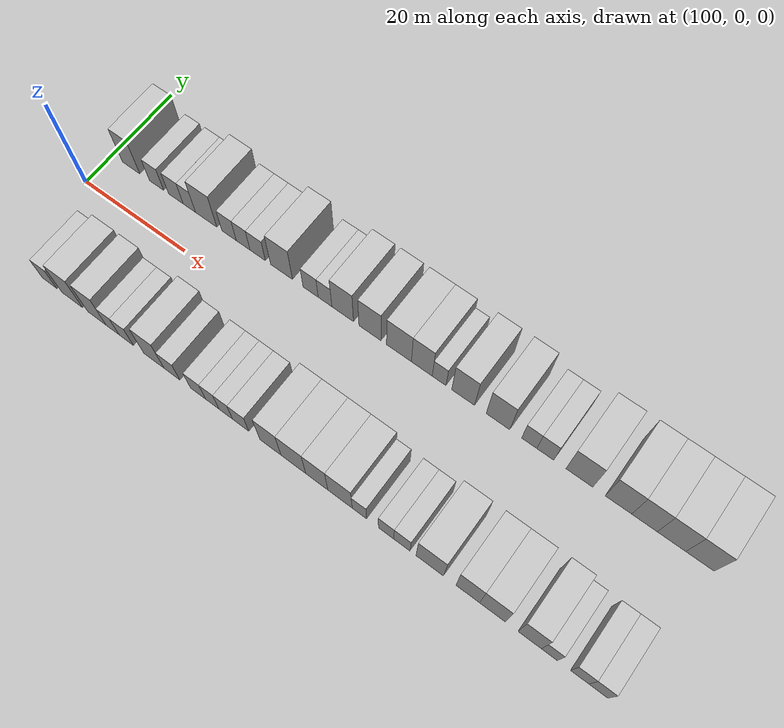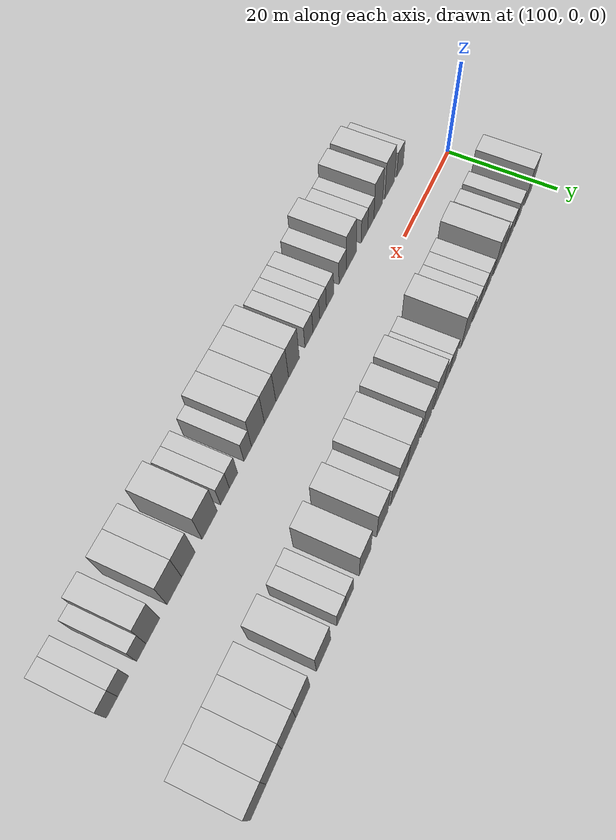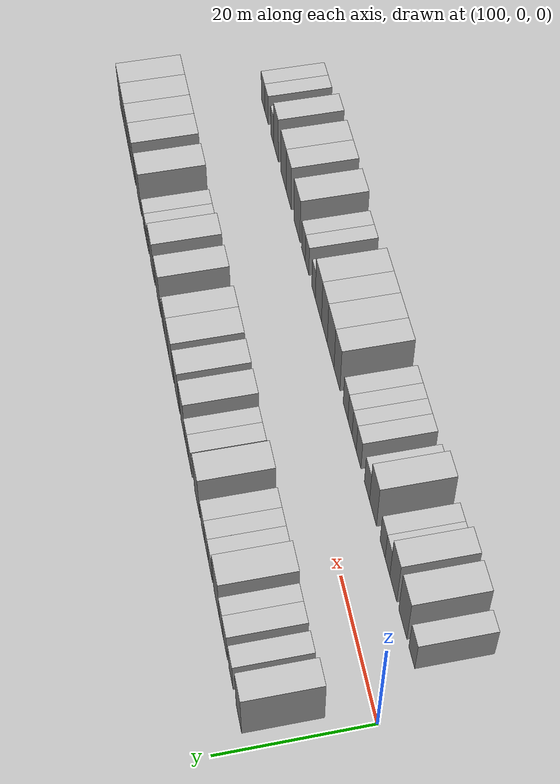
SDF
<sdf version="1.6">
 <world name="default">
  <model name="building_26">
   <static>1</static>
   <pose>103.8715 11.0000 0 0.000000 0.000000 1.570796</pose>
   <link name="link">
    <pose>0 0 4.50 0 0 0</pose>
    <collision name="collision"><geometry><box><size>10.0000 3.6191 9.0000</size></box></geometry></collision>
    <visual name="visual">
     <cast_shadows>0</cast_shadows>
     <geometry><box><size>10.0000 3.6191 9.0000</size></box></geometry>
     <material>
      <script>
       <uri>model://HANNAS_wall/materials/scripts</uri>
       <uri>model://HANNAS_wall/materials/textures</uri>
       <name>vrc/HANNAS_wall</name>
      </script>
     </material>
    </visual>
   </link>
  </model>
  <model name="building_27">
   <static>1</static>
   <pose>109.1415 11.0000 0 0.000000 0.000000 1.570796</pose>
   <link name="link">
    <pose>0 0 3.00 0 0 0</pose>
    <collision name="collision"><geometry><box><size>10.0000 2.9207 6.0000</size></box></geometry></collision>
    <visual name="visual">
     <cast_shadows>0</cast_shadows>
     <geometry><box><size>10.0000 2.9207 6.0000</size></box></geometry>
     <material>
      <script>
       <uri>model://HANNAS_wall/materials/scripts</uri>
       <uri>model://HANNAS_wall/materials/textures</uri>
       <name>vrc/HANNAS_wall</name>
      </script>
     </material>
    </visual>
   </link>
  </model>
  <model name="building_28">
   <static>1</static>
   <pose>113.0786 11.0000 0 0.000000 0.000000 1.570796</pose>
   <link name="link">
    <pose>0 0 3.00 0 0 0</pose>
    <collision name="collision"><geometry><box><size>10.0000 2.9536 6.0000</size></box></geometry></collision>
    <visual name="visual">
     <cast_shadows>0</cast_shadows>
     <geometry><box><size>10.0000 2.9536 6.0000</size></box></geometry>
     <material>
      <script>
       <uri>model://HANNAS_wall/materials/scripts</uri>
       <uri>model://HANNAS_wall/materials/textures</uri>
       <name>vrc/HANNAS_wall</name>
      </script>
     </material>
    </visual>
   </link>
  </model>
  <model name="building_29">
   <static>1</static>
   <pose>115.7921 11.0000 0 0.000000 0.000000 1.570796</pose>
   <link name="link">
    <pose>0 0 3.00 0 0 0</pose>
    <collision name="collision"><geometry><box><size>10.0000 2.4733 6.0000</size></box></geometry></collision>
    <visual name="visual">
     <cast_shadows>0</cast_shadows>
     <geometry><box><size>10.0000 2.4733 6.0000</size></box></geometry>
     <material>
      <script>
       <uri>model://HANNAS_wall/materials/scripts</uri>
       <uri>model://HANNAS_wall/materials/textures</uri>
       <name>vrc/HANNAS_wall</name>
      </script>
     </material>
    </visual>
   </link>
  </model>
  <model name="building_30">
   <static>1</static>
   <pose>119.1500 11.0000 0 0.000000 0.000000 1.570796</pose>
   <link name="link">
    <pose>0 0 4.50 0 0 0</pose>
    <collision name="collision"><geometry><box><size>10.0000 4.2424 9.0000</size></box></geometry></collision>
    <visual name="visual">
     <cast_shadows>0</cast_shadows>
     <geometry><box><size>10.0000 4.2424 9.0000</size></box></geometry>
     <material>
      <script>
       <uri>model://HANNAS_wall/materials/scripts</uri>
       <uri>model://HANNAS_wall/materials/textures</uri>
       <name>vrc/HANNAS_wall</name>
      </script>
     </material>
    </visual>
   </link>
  </model>
  <model name="building_31">
   <static>1</static>
   <pose>123.6941 11.0000 0 0.000000 0.000000 1.570796</pose>
   <link name="link">
    <pose>0 0 3.00 0 0 0</pose>
    <collision name="collision"><geometry><box><size>10.0000 2.8459 6.0000</size></box></geometry></collision>
    <visual name="visual">
     <cast_shadows>0</cast_shadows>
     <geometry><box><size>10.0000 2.8459 6.0000</size></box></geometry>
     <material>
      <script>
       <uri>model://HANNAS_wall/materials/scripts</uri>
       <uri>model://HANNAS_wall/materials/textures</uri>
       <name>vrc/HANNAS_wall</name>
      </script>
     </material>
    </visual>
   </link>
  </model>
  <model name="building_32">
   <static>1</static>
   <pose>126.4587 11.0000 0 0.000000 0.000000 1.570796</pose>
   <link name="link">
    <pose>0 0 3.00 0 0 0</pose>
    <collision name="collision"><geometry><box><size>10.0000 2.6832 6.0000</size></box></geometry></collision>
    <visual name="visual">
     <cast_shadows>0</cast_shadows>
     <geometry><box><size>10.0000 2.6832 6.0000</size></box></geometry>
     <material>
      <script>
       <uri>model://HANNAS_wall/materials/scripts</uri>
       <uri>model://HANNAS_wall/materials/textures</uri>
       <name>vrc/HANNAS_wall</name>
      </script>
     </material>
    </visual>
   </link>
  </model>
  <model name="building_33">
   <static>1</static>
   <pose>129.2818 11.0000 0 0.000000 0.000000 1.570796</pose>
   <link name="link">
    <pose>0 0 3.00 0 0 0</pose>
    <collision name="collision"><geometry><box><size>10.0000 2.9631 6.0000</size></box></geometry></collision>
    <visual name="visual">
     <cast_shadows>0</cast_shadows>
     <geometry><box><size>10.0000 2.9631 6.0000</size></box></geometry>
     <material>
      <script>
       <uri>model://HANNAS_wall/materials/scripts</uri>
       <uri>model://HANNAS_wall/materials/textures</uri>
       <name>vrc/HANNAS_wall</name>
      </script>
     </material>
    </visual>
   </link>
  </model>
  <model name="building_34">
   <static>1</static>
   <pose>133.8488 11.0000 0 0.000000 0.000000 1.570796</pose>
   <link name="link">
    <pose>0 0 4.50 0 0 0</pose>
    <collision name="collision"><geometry><box><size>10.0000 4.1709 9.0000</size></box></geometry></collision>
    <visual name="visual">
     <cast_shadows>0</cast_shadows>
     <geometry><box><size>10.0000 4.1709 9.0000</size></box></geometry>
     <material>
      <script>
       <uri>model://HANNAS_wall/materials/scripts</uri>
       <uri>model://HANNAS_wall/materials/textures</uri>
       <name>vrc/HANNAS_wall</name>
      </script>
     </material>
    </visual>
   </link>
  </model>
  <model name="building_35">
   <static>1</static>
   <pose>139.3656 11.0000 0 0.000000 0.000000 1.570796</pose>
   <link name="link">
    <pose>0 0 3.00 0 0 0</pose>
    <collision name="collision"><geometry><box><size>10.0000 2.8626 6.0000</size></box></geometry></collision>
    <visual name="visual">
     <cast_shadows>0</cast_shadows>
     <geometry><box><size>10.0000 2.8626 6.0000</size></box></geometry>
     <material>
      <script>
       <uri>model://HANNAS_wall/materials/scripts</uri>
       <uri>model://HANNAS_wall/materials/textures</uri>
       <name>vrc/HANNAS_wall</name>
      </script>
     </material>
    </visual>
   </link>
  </model>
  <model name="building_36">
   <static>1</static>
   <pose>142.0650 11.0000 0 0.000000 0.000000 1.570796</pose>
   <link name="link">
    <pose>0 0 3.00 0 0 0</pose>
    <collision name="collision"><geometry><box><size>10.0000 2.5362 6.0000</size></box></geometry></collision>
    <visual name="visual">
     <cast_shadows>0</cast_shadows>
     <geometry><box><size>10.0000 2.5362 6.0000</size></box></geometry>
     <material>
      <script>
       <uri>model://HANNAS_wall/materials/scripts</uri>
       <uri>model://HANNAS_wall/materials/textures</uri>
       <name>vrc/HANNAS_wall</name>
      </script>
     </material>
    </visual>
   </link>
  </model>
  <model name="building_37">
   <static>1</static>
   <pose>145.3249 11.0000 0 0.000000 0.000000 1.570796</pose>
   <link name="link">
    <pose>0 0 4.50 0 0 0</pose>
    <collision name="collision"><geometry><box><size>10.0000 3.9838 9.0000</size></box></geometry></collision>
    <visual name="visual">
     <cast_shadows>0</cast_shadows>
     <geometry><box><size>10.0000 3.9838 9.0000</size></box></geometry>
     <material>
      <script>
       <uri>model://HANNAS_wall/materials/scripts</uri>
       <uri>model://HANNAS_wall/materials/textures</uri>
       <name>vrc/HANNAS_wall</name>
      </script>
     </material>
    </visual>
   </link>
  </model>
  <model name="building_38">
   <static>1</static>
   <pose>150.3178 11.0000 0 0.000000 0.000000 1.570796</pose>
   <link name="link">
    <pose>0 0 4.50 0 0 0</pose>
    <collision name="collision"><geometry><box><size>10.0000 4.0018 9.0000</size></box></geometry></collision>
    <visual name="visual">
     <cast_shadows>0</cast_shadows>
     <geometry><box><size>10.0000 4.0018 9.0000</size></box></geometry>
     <material>
      <script>
       <uri>model://HANNAS_wall/materials/scripts</uri>
       <uri>model://HANNAS_wall/materials/textures</uri>
       <name>vrc/HANNAS_wall</name>
      </script>
     </material>
    </visual>
   </link>
  </model>
  <model name="building_39">
   <static>1</static>
   <pose>155.5438 11.0000 0 0.000000 0.000000 1.570796</pose>
   <link name="link">
    <pose>0 0 4.50 0 0 0</pose>
    <collision name="collision"><geometry><box><size>10.0000 4.4503 9.0000</size></box></geometry></collision>
    <visual name="visual">
     <cast_shadows>0</cast_shadows>
     <geometry><box><size>10.0000 4.4503 9.0000</size></box></geometry>
     <material>
      <script>
       <uri>model://HANNAS_wall/materials/scripts</uri>
       <uri>model://HANNAS_wall/materials/textures</uri>
       <name>vrc/HANNAS_wall</name>
      </script>
     </material>
    </visual>
   </link>
  </model>
  <model name="building_40">
   <static>1</static>
   <pose>159.6092 11.0000 0 0.000000 0.000000 1.570796</pose>
   <link name="link">
    <pose>0 0 4.50 0 0 0</pose>
    <collision name="collision"><geometry><box><size>10.0000 3.6804 9.0000</size></box></geometry></collision>
    <visual name="visual">
     <cast_shadows>0</cast_shadows>
     <geometry><box><size>10.0000 3.6804 9.0000</size></box></geometry>
     <material>
      <script>
       <uri>model://HANNAS_wall/materials/scripts</uri>
       <uri>model://HANNAS_wall/materials/textures</uri>
       <name>vrc/HANNAS_wall</name>
      </script>
     </material>
    </visual>
   </link>
  </model>
  <model name="building_41">
   <static>1</static>
   <pose>162.6507 11.0000 0 0.000000 0.000000 1.570796</pose>
   <link name="link">
    <pose>0 0 3.00 0 0 0</pose>
    <collision name="collision"><geometry><box><size>10.0000 2.4026 6.0000</size></box></geometry></collision>
    <visual name="visual">
     <cast_shadows>0</cast_shadows>
     <geometry><box><size>10.0000 2.4026 6.0000</size></box></geometry>
     <material>
      <script>
       <uri>model://HANNAS_wall/materials/scripts</uri>
       <uri>model://HANNAS_wall/materials/textures</uri>
       <name>vrc/HANNAS_wall</name>
      </script>
     </material>
    </visual>
   </link>
  </model>
  <model name="building_42">
   <static>1</static>
   <pose>166.8275 11.0000 0 0.000000 0.000000 1.570796</pose>
   <link name="link">
    <pose>0 0 4.50 0 0 0</pose>
    <collision name="collision"><geometry><box><size>10.0000 3.9509 9.0000</size></box></geometry></collision>
    <visual name="visual">
     <cast_shadows>0</cast_shadows>
     <geometry><box><size>10.0000 3.9509 9.0000</size></box></geometry>
     <material>
      <script>
       <uri>model://HANNAS_wall/materials/scripts</uri>
       <uri>model://HANNAS_wall/materials/textures</uri>
       <name>vrc/HANNAS_wall</name>
      </script>
     </material>
    </visual>
   </link>
  </model>
  <model name="building_43">
   <static>1</static>
   <pose>172.7997 11.0000 0 0.000000 0.000000 1.570796</pose>
   <link name="link">
    <pose>0 0 4.50 0 0 0</pose>
    <collision name="collision"><geometry><box><size>10.0000 3.9935 9.0000</size></box></geometry></collision>
    <visual name="visual">
     <cast_shadows>0</cast_shadows>
     <geometry><box><size>10.0000 3.9935 9.0000</size></box></geometry>
     <material>
      <script>
       <uri>model://HANNAS_wall/materials/scripts</uri>
       <uri>model://HANNAS_wall/materials/textures</uri>
       <name>vrc/HANNAS_wall</name>
      </script>
     </material>
    </visual>
   </link>
  </model>
  <model name="building_44">
   <static>1</static>
   <pose>178.0662 11.0000 0 0.000000 0.000000 1.570796</pose>
   <link name="link">
    <pose>0 0 3.00 0 0 0</pose>
    <collision name="collision"><geometry><box><size>10.0000 2.5396 6.0000</size></box></geometry></collision>
    <visual name="visual">
     <cast_shadows>0</cast_shadows>
     <geometry><box><size>10.0000 2.5396 6.0000</size></box></geometry>
     <material>
      <script>
       <uri>model://HANNAS_wall/materials/scripts</uri>
       <uri>model://HANNAS_wall/materials/textures</uri>
       <name>vrc/HANNAS_wall</name>
      </script>
     </material>
    </visual>
   </link>
  </model>
  <model name="building_45">
   <static>1</static>
   <pose>180.7364 11.0000 0 0.000000 0.000000 1.570796</pose>
   <link name="link">
    <pose>0 0 3.00 0 0 0</pose>
    <collision name="collision"><geometry><box><size>10.0000 2.8009 6.0000</size></box></geometry></collision>
    <visual name="visual">
     <cast_shadows>0</cast_shadows>
     <geometry><box><size>10.0000 2.8009 6.0000</size></box></geometry>
     <material>
      <script>
       <uri>model://HANNAS_wall/materials/scripts</uri>
       <uri>model://HANNAS_wall/materials/textures</uri>
       <name>vrc/HANNAS_wall</name>
      </script>
     </material>
    </visual>
   </link>
  </model>
  <model name="building_46">
   <static>1</static>
   <pose>186.3258 11.0000 0 0.000000 0.000000 1.570796</pose>
   <link name="link">
    <pose>0 0 4.50 0 0 0</pose>
    <collision name="collision"><geometry><box><size>10.0000 4.3777 9.0000</size></box></geometry></collision>
    <visual name="visual">
     <cast_shadows>0</cast_shadows>
     <geometry><box><size>10.0000 4.3777 9.0000</size></box></geometry>
     <material>
      <script>
       <uri>model://HANNAS_wall/materials/scripts</uri>
       <uri>model://HANNAS_wall/materials/textures</uri>
       <name>vrc/HANNAS_wall</name>
      </script>
     </material>
    </visual>
   </link>
  </model>
  <model name="building_47">
   <static>1</static>
   <pose>192.6203 11.0000 0 0.000000 0.000000 1.570796</pose>
   <link name="link">
    <pose>0 0 4.50 0 0 0</pose>
    <collision name="collision"><geometry><box><size>10.0000 4.2114 9.0000</size></box></geometry></collision>
    <visual name="visual">
     <cast_shadows>0</cast_shadows>
     <geometry><box><size>10.0000 4.2114 9.0000</size></box></geometry>
     <material>
      <script>
       <uri>model://HANNAS_wall/materials/scripts</uri>
       <uri>model://HANNAS_wall/materials/textures</uri>
       <name>vrc/HANNAS_wall</name>
      </script>
     </material>
    </visual>
   </link>
  </model>
  <model name="building_48">
   <static>1</static>
   <pose>196.7379 11.0000 0 0.000000 0.000000 1.570796</pose>
   <link name="link">
    <pose>0 0 4.50 0 0 0</pose>
    <collision name="collision"><geometry><box><size>10.0000 4.0237 9.0000</size></box></geometry></collision>
    <visual name="visual">
     <cast_shadows>0</cast_shadows>
     <geometry><box><size>10.0000 4.0237 9.0000</size></box></geometry>
     <material>
      <script>
       <uri>model://HANNAS_wall/materials/scripts</uri>
       <uri>model://HANNAS_wall/materials/textures</uri>
       <name>vrc/HANNAS_wall</name>
      </script>
     </material>
    </visual>
   </link>
  </model>
  <model name="building_49">
   <static>1</static>
   <pose>200.9636 11.0000 0 0.000000 0.000000 1.570796</pose>
   <link name="link">
    <pose>0 0 4.50 0 0 0</pose>
    <collision name="collision"><geometry><box><size>10.0000 4.4278 9.0000</size></box></geometry></collision>
    <visual name="visual">
     <cast_shadows>0</cast_shadows>
     <geometry><box><size>10.0000 4.4278 9.0000</size></box></geometry>
     <material>
      <script>
       <uri>model://HANNAS_wall/materials/scripts</uri>
       <uri>model://HANNAS_wall/materials/textures</uri>
       <name>vrc/HANNAS_wall</name>
      </script>
     </material>
    </visual>
   </link>
  </model>
  <model name="building_50">
   <static>1</static>
   <pose>205.3556 11.0000 0 0.000000 0.000000 1.570796</pose>
   <link name="link">
    <pose>0 0 4.50 0 0 0</pose>
    <collision name="collision"><geometry><box><size>10.0000 4.3562 9.0000</size></box></geometry></collision>
    <visual name="visual">
     <cast_shadows>0</cast_shadows>
     <geometry><box><size>10.0000 4.3562 9.0000</size></box></geometry>
     <material>
      <script>
       <uri>model://HANNAS_wall/materials/scripts</uri>
       <uri>model://HANNAS_wall/materials/textures</uri>
       <name>vrc/HANNAS_wall</name>
      </script>
     </material>
    </visual>
   </link>
  </model>
  <model name="building_76">
   <static>1</static>
   <pose>107.4969 -11.0000 0 0.000000 0.000000 1.570796</pose>
   <link name="link">
    <pose>0 0 3.00 0 0 0</pose>
    <collision name="collision"><geometry><box><size>10.0000 2.9445 6.0000</size></box></geometry></collision>
    <visual name="visual">
     <cast_shadows>0</cast_shadows>
     <geometry><box><size>10.0000 2.9445 6.0000</size></box></geometry>
     <material>
      <script>
       <uri>model://HANNAS_wall/materials/scripts</uri>
       <uri>model://HANNAS_wall/materials/textures</uri>
       <name>vrc/HANNAS_wall</name>
      </script>
     </material>
    </visual>
   </link>
  </model>
  <model name="building_77">
   <static>1</static>
   <pose>112.0538 -11.0000 0 0.000000 0.000000 1.570796</pose>
   <link name="link">
    <pose>0 0 4.50 0 0 0</pose>
    <collision name="collision"><geometry><box><size>10.0000 4.1693 9.0000</size></box></geometry></collision>
    <visual name="visual">
     <cast_shadows>0</cast_shadows>
     <geometry><box><size>10.0000 4.1693 9.0000</size></box></geometry>
     <material>
      <script>
       <uri>model://HANNAS_wall/materials/scripts</uri>
       <uri>model://HANNAS_wall/materials/textures</uri>
       <name>vrc/HANNAS_wall</name>
      </script>
     </material>
    </visual>
   </link>
  </model>
  <model name="building_78">
   <static>1</static>
   <pose>116.9832 -11.0000 0 0.000000 0.000000 1.570796</pose>
   <link name="link">
    <pose>0 0 4.50 0 0 0</pose>
    <collision name="collision"><geometry><box><size>10.0000 3.6896 9.0000</size></box></geometry></collision>
    <visual name="visual">
     <cast_shadows>0</cast_shadows>
     <geometry><box><size>10.0000 3.6896 9.0000</size></box></geometry>
     <material>
      <script>
       <uri>model://HANNAS_wall/materials/scripts</uri>
       <uri>model://HANNAS_wall/materials/textures</uri>
       <name>vrc/HANNAS_wall</name>
      </script>
     </material>
    </visual>
   </link>
  </model>
  <model name="building_79">
   <static>1</static>
   <pose>120.0943 -11.0000 0 0.000000 0.000000 1.570796</pose>
   <link name="link">
    <pose>0 0 3.00 0 0 0</pose>
    <collision name="collision"><geometry><box><size>10.0000 2.5326 6.0000</size></box></geometry></collision>
    <visual name="visual">
     <cast_shadows>0</cast_shadows>
     <geometry><box><size>10.0000 2.5326 6.0000</size></box></geometry>
     <material>
      <script>
       <uri>model://HANNAS_wall/materials/scripts</uri>
       <uri>model://HANNAS_wall/materials/textures</uri>
       <name>vrc/HANNAS_wall</name>
      </script>
     </material>
    </visual>
   </link>
  </model>
  <model name="building_80">
   <static>1</static>
   <pose>122.7240 -11.0000 0 0.000000 0.000000 1.570796</pose>
   <link name="link">
    <pose>0 0 3.00 0 0 0</pose>
    <collision name="collision"><geometry><box><size>10.0000 2.7267 6.0000</size></box></geometry></collision>
    <visual name="visual">
     <cast_shadows>0</cast_shadows>
     <geometry><box><size>10.0000 2.7267 6.0000</size></box></geometry>
     <material>
      <script>
       <uri>model://HANNAS_wall/materials/scripts</uri>
       <uri>model://HANNAS_wall/materials/textures</uri>
       <name>vrc/HANNAS_wall</name>
      </script>
     </material>
    </visual>
   </link>
  </model>
  <model name="building_81">
   <static>1</static>
   <pose>128.0351 -11.0000 0 0.000000 0.000000 1.570796</pose>
   <link name="link">
    <pose>0 0 4.50 0 0 0</pose>
    <collision name="collision"><geometry><box><size>10.0000 3.8955 9.0000</size></box></geometry></collision>
    <visual name="visual">
     <cast_shadows>0</cast_shadows>
     <geometry><box><size>10.0000 3.8955 9.0000</size></box></geometry>
     <material>
      <script>
       <uri>model://HANNAS_wall/materials/scripts</uri>
       <uri>model://HANNAS_wall/materials/textures</uri>
       <name>vrc/HANNAS_wall</name>
      </script>
     </material>
    </visual>
   </link>
  </model>
  <model name="building_82">
   <static>1</static>
   <pose>131.4656 -11.0000 0 0.000000 0.000000 1.570796</pose>
   <link name="link">
    <pose>0 0 3.00 0 0 0</pose>
    <collision name="collision"><geometry><box><size>10.0000 2.9656 6.0000</size></box></geometry></collision>
    <visual name="visual">
     <cast_shadows>0</cast_shadows>
     <geometry><box><size>10.0000 2.9656 6.0000</size></box></geometry>
     <material>
      <script>
       <uri>model://HANNAS_wall/materials/scripts</uri>
       <uri>model://HANNAS_wall/materials/textures</uri>
       <name>vrc/HANNAS_wall</name>
      </script>
     </material>
    </visual>
   </link>
  </model>
  <model name="building_83">
   <static>1</static>
   <pose>136.3592 -11.0000 0 0.000000 0.000000 1.570796</pose>
   <link name="link">
    <pose>0 0 3.00 0 0 0</pose>
    <collision name="collision"><geometry><box><size>10.0000 2.8217 6.0000</size></box></geometry></collision>
    <visual name="visual">
     <cast_shadows>0</cast_shadows>
     <geometry><box><size>10.0000 2.8217 6.0000</size></box></geometry>
     <material>
      <script>
       <uri>model://HANNAS_wall/materials/scripts</uri>
       <uri>model://HANNAS_wall/materials/textures</uri>
       <name>vrc/HANNAS_wall</name>
      </script>
     </material>
    </visual>
   </link>
  </model>
  <model name="building_84">
   <static>1</static>
   <pose>139.0121 -11.0000 0 0.000000 0.000000 1.570796</pose>
   <link name="link">
    <pose>0 0 3.00 0 0 0</pose>
    <collision name="collision"><geometry><box><size>10.0000 2.4841 6.0000</size></box></geometry></collision>
    <visual name="visual">
     <cast_shadows>0</cast_shadows>
     <geometry><box><size>10.0000 2.4841 6.0000</size></box></geometry>
     <material>
      <script>
       <uri>model://HANNAS_wall/materials/scripts</uri>
       <uri>model://HANNAS_wall/materials/textures</uri>
       <name>vrc/HANNAS_wall</name>
      </script>
     </material>
    </visual>
   </link>
  </model>
  <model name="building_85">
   <static>1</static>
   <pose>141.5066 -11.0000 0 0.000000 0.000000 1.570796</pose>
   <link name="link">
    <pose>0 0 3.00 0 0 0</pose>
    <collision name="collision"><geometry><box><size>10.0000 2.5048 6.0000</size></box></geometry></collision>
    <visual name="visual">
     <cast_shadows>0</cast_shadows>
     <geometry><box><size>10.0000 2.5048 6.0000</size></box></geometry>
     <material>
      <script>
       <uri>model://HANNAS_wall/materials/scripts</uri>
       <uri>model://HANNAS_wall/materials/textures</uri>
       <name>vrc/HANNAS_wall</name>
      </script>
     </material>
    </visual>
   </link>
  </model>
  <model name="building_86">
   <static>1</static>
   <pose>144.2179 -11.0000 0 0.000000 0.000000 1.570796</pose>
   <link name="link">
    <pose>0 0 3.00 0 0 0</pose>
    <collision name="collision"><geometry><box><size>10.0000 2.9177 6.0000</size></box></geometry></collision>
    <visual name="visual">
     <cast_shadows>0</cast_shadows>
     <geometry><box><size>10.0000 2.9177 6.0000</size></box></geometry>
     <material>
      <script>
       <uri>model://HANNAS_wall/materials/scripts</uri>
       <uri>model://HANNAS_wall/materials/textures</uri>
       <name>vrc/HANNAS_wall</name>
      </script>
     </material>
    </visual>
   </link>
  </model>
  <model name="building_87">
   <static>1</static>
   <pose>149.5673 -11.0000 0 0.000000 0.000000 1.570796</pose>
   <link name="link">
    <pose>0 0 4.50 0 0 0</pose>
    <collision name="collision"><geometry><box><size>10.0000 3.7812 9.0000</size></box></geometry></collision>
    <visual name="visual">
     <cast_shadows>0</cast_shadows>
     <geometry><box><size>10.0000 3.7812 9.0000</size></box></geometry>
     <material>
      <script>
       <uri>model://HANNAS_wall/materials/scripts</uri>
       <uri>model://HANNAS_wall/materials/textures</uri>
       <name>vrc/HANNAS_wall</name>
      </script>
     </material>
    </visual>
   </link>
  </model>
  <model name="building_88">
   <static>1</static>
   <pose>153.6435 -11.0000 0 0.000000 0.000000 1.570796</pose>
   <link name="link">
    <pose>0 0 4.50 0 0 0</pose>
    <collision name="collision"><geometry><box><size>10.0000 4.3712 9.0000</size></box></geometry></collision>
    <visual name="visual">
     <cast_shadows>0</cast_shadows>
     <geometry><box><size>10.0000 4.3712 9.0000</size></box></geometry>
     <material>
      <script>
       <uri>model://HANNAS_wall/materials/scripts</uri>
       <uri>model://HANNAS_wall/materials/textures</uri>
       <name>vrc/HANNAS_wall</name>
      </script>
     </material>
    </visual>
   </link>
  </model>
  <model name="building_89">
   <static>1</static>
   <pose>157.7462 -11.0000 0 0.000000 0.000000 1.570796</pose>
   <link name="link">
    <pose>0 0 4.50 0 0 0</pose>
    <collision name="collision"><geometry><box><size>10.0000 3.8343 9.0000</size></box></geometry></collision>
    <visual name="visual">
     <cast_shadows>0</cast_shadows>
     <geometry><box><size>10.0000 3.8343 9.0000</size></box></geometry>
     <material>
      <script>
       <uri>model://HANNAS_wall/materials/scripts</uri>
       <uri>model://HANNAS_wall/materials/textures</uri>
       <name>vrc/HANNAS_wall</name>
      </script>
     </material>
    </visual>
   </link>
  </model>
  <model name="building_90">
   <static>1</static>
   <pose>161.7633 -11.0000 0 0.000000 0.000000 1.570796</pose>
   <link name="link">
    <pose>0 0 4.50 0 0 0</pose>
    <collision name="collision"><geometry><box><size>10.0000 4.1998 9.0000</size></box></geometry></collision>
    <visual name="visual">
     <cast_shadows>0</cast_shadows>
     <geometry><box><size>10.0000 4.1998 9.0000</size></box></geometry>
     <material>
      <script>
       <uri>model://HANNAS_wall/materials/scripts</uri>
       <uri>model://HANNAS_wall/materials/textures</uri>
       <name>vrc/HANNAS_wall</name>
      </script>
     </material>
    </visual>
   </link>
  </model>
  <model name="building_91">
   <static>1</static>
   <pose>165.0782 -11.0000 0 0.000000 0.000000 1.570796</pose>
   <link name="link">
    <pose>0 0 3.00 0 0 0</pose>
    <collision name="collision"><geometry><box><size>10.0000 2.4301 6.0000</size></box></geometry></collision>
    <visual name="visual">
     <cast_shadows>0</cast_shadows>
     <geometry><box><size>10.0000 2.4301 6.0000</size></box></geometry>
     <material>
      <script>
       <uri>model://HANNAS_wall/materials/scripts</uri>
       <uri>model://HANNAS_wall/materials/textures</uri>
       <name>vrc/HANNAS_wall</name>
      </script>
     </material>
    </visual>
   </link>
  </model>
  <model name="building_92">
   <static>1</static>
   <pose>169.5756 -11.0000 0 0.000000 0.000000 1.570796</pose>
   <link name="link">
    <pose>0 0 3.00 0 0 0</pose>
    <collision name="collision"><geometry><box><size>10.0000 2.5648 6.0000</size></box></geometry></collision>
    <visual name="visual">
     <cast_shadows>0</cast_shadows>
     <geometry><box><size>10.0000 2.5648 6.0000</size></box></geometry>
     <material>
      <script>
       <uri>model://HANNAS_wall/materials/scripts</uri>
       <uri>model://HANNAS_wall/materials/textures</uri>
       <name>vrc/HANNAS_wall</name>
      </script>
     </material>
    </visual>
   </link>
  </model>
  <model name="building_93">
   <static>1</static>
   <pose>172.2069 -11.0000 0 0.000000 0.000000 1.570796</pose>
   <link name="link">
    <pose>0 0 3.00 0 0 0</pose>
    <collision name="collision"><geometry><box><size>10.0000 2.6978 6.0000</size></box></geometry></collision>
    <visual name="visual">
     <cast_shadows>0</cast_shadows>
     <geometry><box><size>10.0000 2.6978 6.0000</size></box></geometry>
     <material>
      <script>
       <uri>model://HANNAS_wall/materials/scripts</uri>
       <uri>model://HANNAS_wall/materials/textures</uri>
       <name>vrc/HANNAS_wall</name>
      </script>
     </material>
    </visual>
   </link>
  </model>
  <model name="building_94">
   <static>1</static>
   <pose>176.8055 -11.0000 0 0.000000 0.000000 1.570796</pose>
   <link name="link">
    <pose>0 0 4.50 0 0 0</pose>
    <collision name="collision"><geometry><box><size>10.0000 4.4993 9.0000</size></box></geometry></collision>
    <visual name="visual">
     <cast_shadows>0</cast_shadows>
     <geometry><box><size>10.0000 4.4993 9.0000</size></box></geometry>
     <material>
      <script>
       <uri>model://HANNAS_wall/materials/scripts</uri>
       <uri>model://HANNAS_wall/materials/textures</uri>
       <name>vrc/HANNAS_wall</name>
      </script>
     </material>
    </visual>
   </link>
  </model>
  <model name="building_95">
   <static>1</static>
   <pose>182.9599 -11.0000 0 0.000000 0.000000 1.570796</pose>
   <link name="link">
    <pose>0 0 4.50 0 0 0</pose>
    <collision name="collision"><geometry><box><size>10.0000 3.8095 9.0000</size></box></geometry></collision>
    <visual name="visual">
     <cast_shadows>0</cast_shadows>
     <geometry><box><size>10.0000 3.8095 9.0000</size></box></geometry>
     <material>
      <script>
       <uri>model://HANNAS_wall/materials/scripts</uri>
       <uri>model://HANNAS_wall/materials/textures</uri>
       <name>vrc/HANNAS_wall</name>
      </script>
     </material>
    </visual>
   </link>
  </model>
  <model name="building_96">
   <static>1</static>
   <pose>186.8975 -11.0000 0 0.000000 0.000000 1.570796</pose>
   <link name="link">
    <pose>0 0 4.50 0 0 0</pose>
    <collision name="collision"><geometry><box><size>10.0000 4.0656 9.0000</size></box></geometry></collision>
    <visual name="visual">
     <cast_shadows>0</cast_shadows>
     <geometry><box><size>10.0000 4.0656 9.0000</size></box></geometry>
     <material>
      <script>
       <uri>model://HANNAS_wall/materials/scripts</uri>
       <uri>model://HANNAS_wall/materials/textures</uri>
       <name>vrc/HANNAS_wall</name>
      </script>
     </material>
    </visual>
   </link>
  </model>
  <model name="building_97">
   <static>1</static>
   <pose>192.7501 -11.0000 0 0.000000 0.000000 1.570796</pose>
   <link name="link">
    <pose>0 0 4.50 0 0 0</pose>
    <collision name="collision"><geometry><box><size>10.0000 3.6394 9.0000</size></box></geometry></collision>
    <visual name="visual">
     <cast_shadows>0</cast_shadows>
     <geometry><box><size>10.0000 3.6394 9.0000</size></box></geometry>
     <material>
      <script>
       <uri>model://HANNAS_wall/materials/scripts</uri>
       <uri>model://HANNAS_wall/materials/textures</uri>
       <name>vrc/HANNAS_wall</name>
      </script>
     </material>
    </visual>
   </link>
  </model>
  <model name="building_98">
   <static>1</static>
   <pose>195.7950 -11.0000 0 0.000000 0.000000 1.570796</pose>
   <link name="link">
    <pose>0 0 3.00 0 0 0</pose>
    <collision name="collision"><geometry><box><size>10.0000 2.4505 6.0000</size></box></geometry></collision>
    <visual name="visual">
     <cast_shadows>0</cast_shadows>
     <geometry><box><size>10.0000 2.4505 6.0000</size></box></geometry>
     <material>
      <script>
       <uri>model://HANNAS_wall/materials/scripts</uri>
       <uri>model://HANNAS_wall/materials/textures</uri>
       <name>vrc/HANNAS_wall</name>
      </script>
     </material>
    </visual>
   </link>
  </model>
  <model name="building_99">
   <static>1</static>
   <pose>200.4057 -11.0000 0 0.000000 0.000000 1.570796</pose>
   <link name="link">
    <pose>0 0 3.00 0 0 0</pose>
    <collision name="collision"><geometry><box><size>10.0000 2.7709 6.0000</size></box></geometry></collision>
    <visual name="visual">
     <cast_shadows>0</cast_shadows>
     <geometry><box><size>10.0000 2.7709 6.0000</size></box></geometry>
     <material>
      <script>
       <uri>model://HANNAS_wall/materials/scripts</uri>
       <uri>model://HANNAS_wall/materials/textures</uri>
       <name>vrc/HANNAS_wall</name>
      </script>
     </material>
    </visual>
   </link>
  </model>
  <model name="building_100">
   <static>1</static>
   <pose>203.2148 -11.0000 0 0.000000 0.000000 1.570796</pose>
   <link name="link">
    <pose>0 0 3.00 0 0 0</pose>
    <collision name="collision"><geometry><box><size>10.0000 2.8473 6.0000</size></box></geometry></collision>
    <visual name="visual">
     <cast_shadows>0</cast_shadows>
     <geometry><box><size>10.0000 2.8473 6.0000</size></box></geometry>
     <material>
      <script>
       <uri>model://HANNAS_wall/materials/scripts</uri>
       <uri>model://HANNAS_wall/materials/textures</uri>
       <name>vrc/HANNAS_wall</name>
      </script>
     </material>
    </visual>
   </link>
  </model>
 </world>
</sdf>
